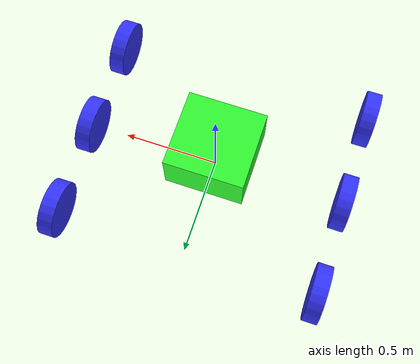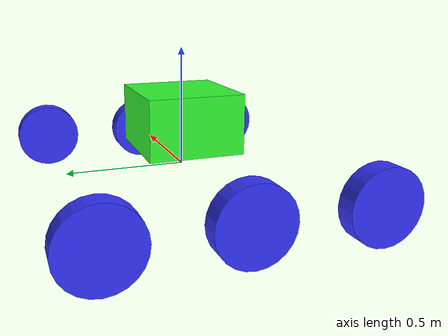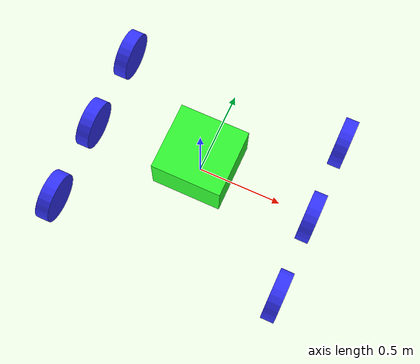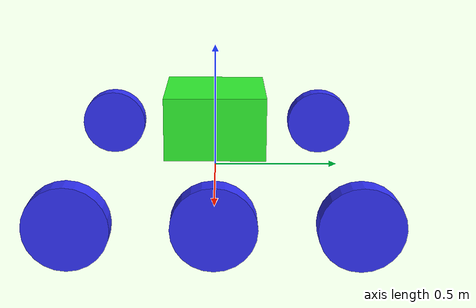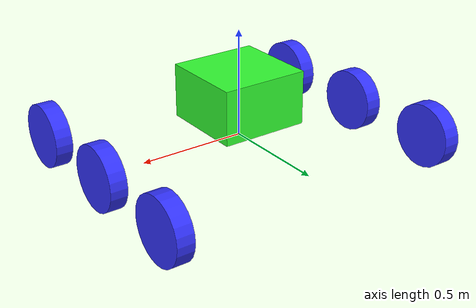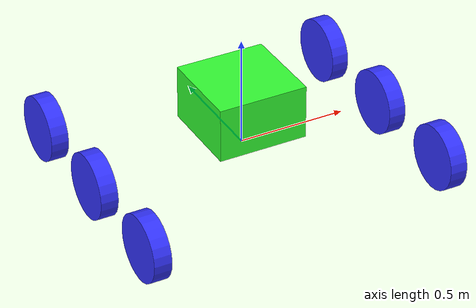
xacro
<?xml version="1.0"?>

<robot name="rover" xmlns:xacro="http://www.ros.org/wiki/xacro" xmlns:gazebo="http://gazebosim.org/schema">>
  <!-- Declaring Positional Constraints -->
  <xacro:property name="chasis_origin" value="0 0 0.2" />

  <!-- Declaring Dimension Constants (unit Meters)-->
  <xacro:property name="wheel_radius" value="0.15" />            <!-- this is BS-->
  <xacro:property name="wheel_width" value="0.08" />             <!-- this is BS-->
  <xacro:property name="chasis_height" value="0.25"/>            <!-- this is BS-->
  <xacro:property name="chasis_width" value="0.4"/>              <!-- this is BS-->
  <xacro:property name="chasis_length" value="0.410718"/>        <!-- this is BS-->

  <!-- Declaring Mass Constants (unit Kilograms)-->
  <xacro:property name="chasis_mass" value="1.0"/>               <!-- this is BS-->

  <!-- declaring colors -->
  <material name="green">
    <color rgba="0.2 1 0.2 1"/>
  </material>
  <material name="blue">
    <color rgba="0.2 0.2 1 1"/>
  </material>
  <material name="red">
    <color rgba="1 0.2 0.2 1"/>
  </material>

  <link name="base_link">
  </link>

  <link name="chasis_link">
    <visual>
      <origin xyz="${chasis_origin}" rpy="0 0 0"/>
      <geometry>
        <box size="${chasis_length} ${chasis_width} ${chasis_height}"/>
      </geometry>
      <material name="green">
        <color rgba="0.2 1 0.2 1"/>
      </material>
    </visual>
    <collision>
      <origin xyz="${chasis_origin}" rpy="0 0 0"/>
      <geometry>
        <box size="${chasis_length} ${chasis_width} ${chasis_height}" />
      </geometry>
    </collision>
    <inertial>
      <origin xyz="${chasis_origin}" rpy="0 0 0" />
      <mass value="1" />
      <inertia ixx="0.17" ixy="0.0" ixz="0.0" iyy="0.17" iyz="0.0" izz="0.17" />
    </inertial>
  </link>

    <!-- Wheels go BRRRRR -->
  <xacro:macro name="wheel" params="name x_wheel y_wheel tilt_sign">
    <link name="${name}">
    <xacro:property name="tilt" value="0 ${tilt_sign*pi/2} 0" />

      <visual>
        <origin xyz="0 0 0" rpy="${tilt}" />
        <material name="blue">
          <color rgba="0.2 0.2 1 1"/>
        </material>
        <geometry>
          <cylinder radius="${wheel_radius}" length="${wheel_width}" />
        </geometry>
      </visual>
      <collision>
        <origin xyz="0 0 0" rpy="${tilt}"/>
        <geometry>
          <cylinder radius="${wheel_radius}" length="${wheel_width}" />
        </geometry>
      </collision>
      <inertial>
        <origin xyz="0 0 0" rpy="${tilt}"/>
        <mass value="0.5" />
        <inertia ixx="0.17" ixy="0.0" ixz="0.0" iyy="0.17" iyz="0.0" izz="0.17" />
      </inertial>
    </link>

    <joint name="${name}_joint" type="continuous">
      <parent link="base_link" />
      <child link="${name}" />
      <origin xyz="${x_wheel} ${y_wheel} 0" rpy="0 0 0" />
      <axis xyz="1 0 0" />
    </joint>
  </xacro:macro>

  <xacro:wheel name="front_left_wheel" x_wheel="-0.7" y_wheel="0.5" tilt_sign="-1"/>
  <xacro:wheel name="front_right_wheel" x_wheel="0.7" y_wheel="0.5" tilt_sign="1"/>
  <xacro:wheel name="middle_left_wheel" x_wheel="-0.7" y_wheel="0" tilt_sign="-1"/>
  <xacro:wheel name="middle_right_wheel" x_wheel="0.7" y_wheel="0" tilt_sign="1"/>
  <xacro:wheel name="rear_left_wheel" x_wheel="-0.7" y_wheel="-0.5" tilt_sign="-1"/>
  <xacro:wheel name="rear_right_wheel" x_wheel="0.7" y_wheel="-0.5" tilt_sign="1"/>

  <joint name="chasis_base_joint" type="fixed">
    <parent link="base_link"/>
    <child link="chasis_link"/>
    <origin xyz="0 0 0"/>
  </joint>

  <xacro:macro name="wheel_joint" params="name">
    <joint name="${name}">
      <command_interface name="effort">
        <param name="min">-10</param>
        <param name="max">10</param>
      </command_interface>
      <command_interface name="velocity">
        <param name="min">-10</param>
        <param name="max">10</param>
      </command_interface>
      <state_interface name="position" />
      <state_interface name="velocity" />
    </joint>
  </xacro:macro>

  <ros2_control name="GazeboSystem" type="system">
    <hardware>
      <plugin>gazebo_ros2_control/GazeboSystem</plugin>
    </hardware>

    <xacro:wheel_joint name="front_left_wheel_joint"/>
    <xacro:wheel_joint name="front_right_wheel_joint"/>
    <xacro:wheel_joint name="middle_left_wheel_joint"/>
    <xacro:wheel_joint name="middle_right_wheel_joint"/>
    <xacro:wheel_joint name="rear_left_wheel_joint"/>
    <xacro:wheel_joint name="rear_right_wheel_joint"/>
  </ros2_control>

  <gazebo>
    <plugin filename="libgazebo_ros2_control.so" name="gazebo_ros2_control">
      <parameters>$(find rover_control)/config/rover_control.yaml</parameters>
    </plugin>
  </gazebo>

  <gazebo reference="rover_link">
    <material>Gazebo/Green</material>
  </gazebo>

</robot>
